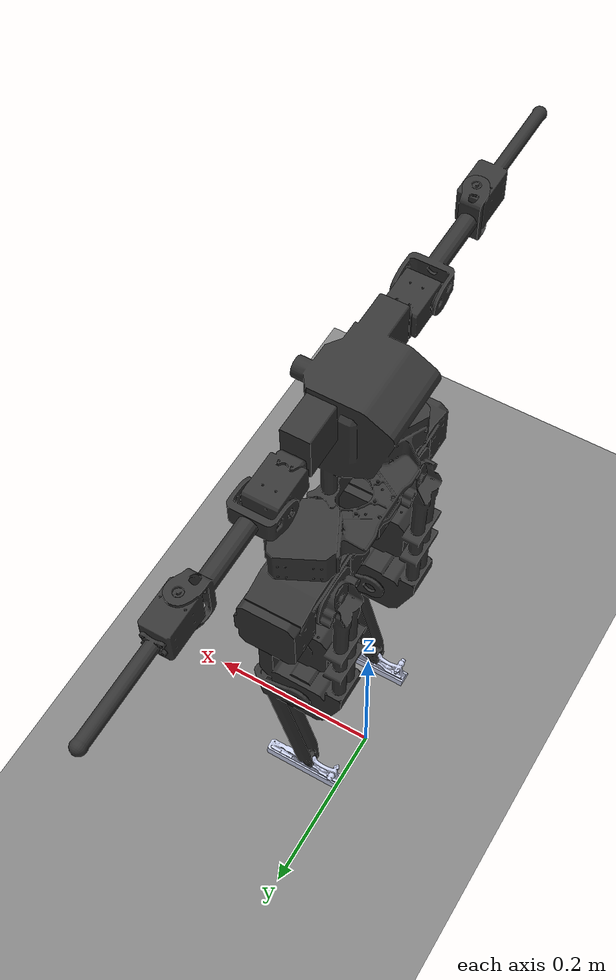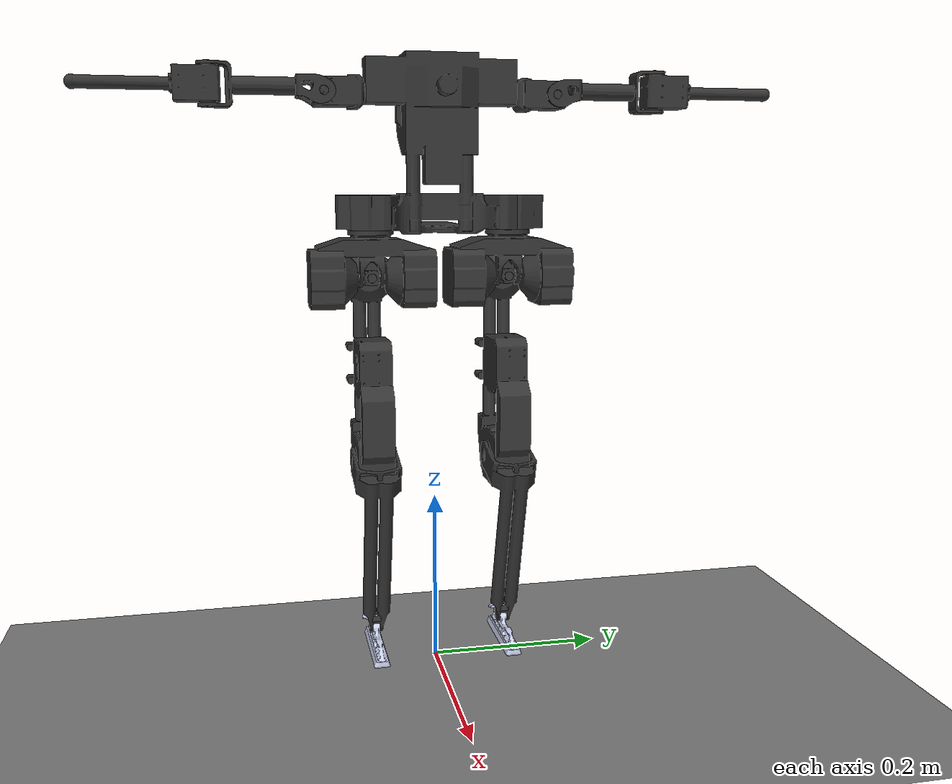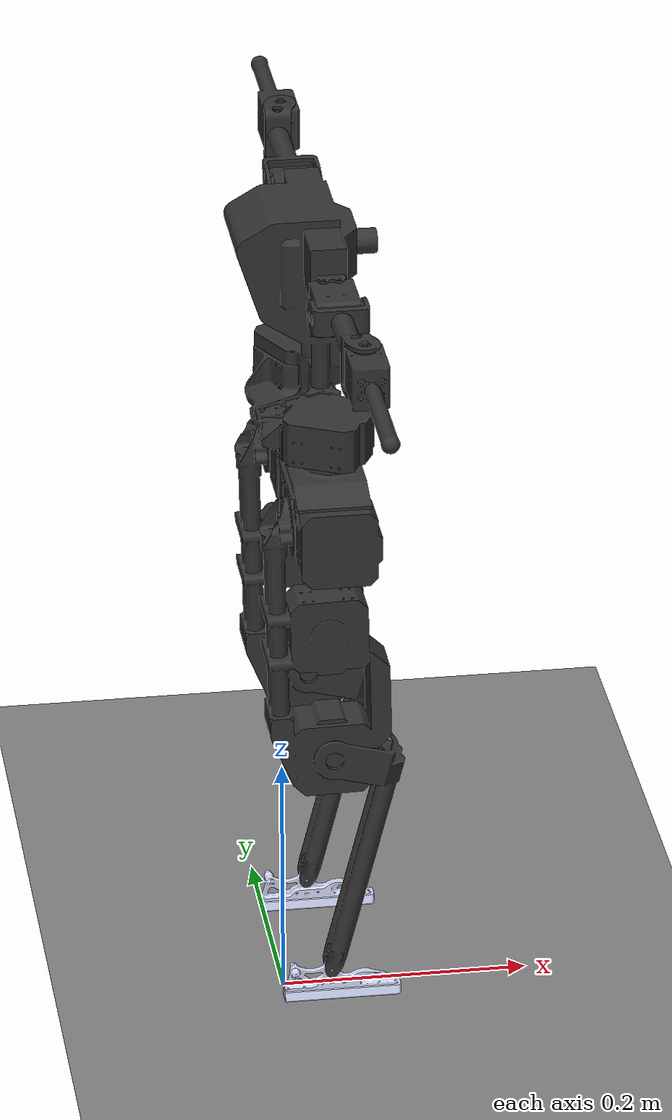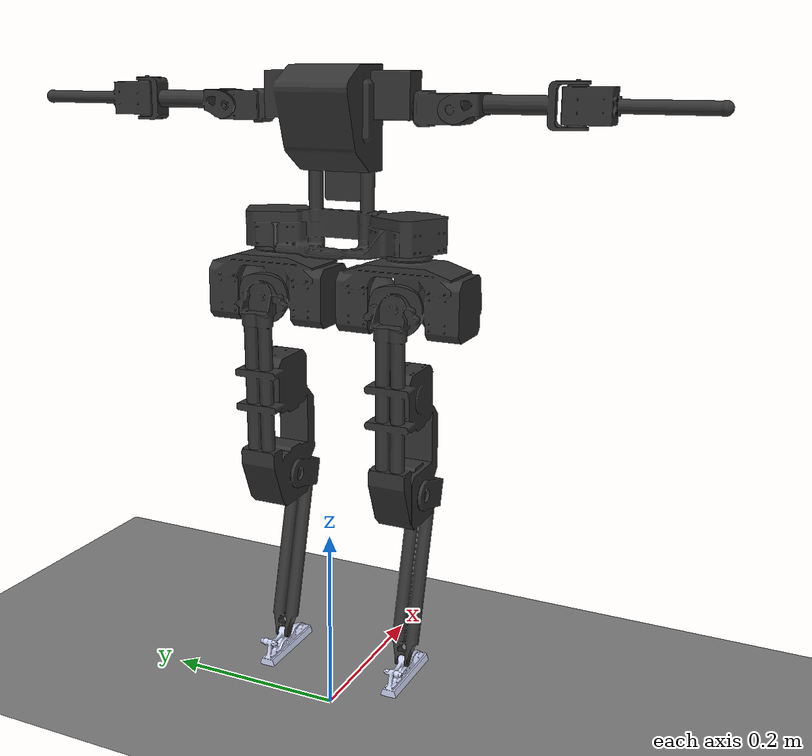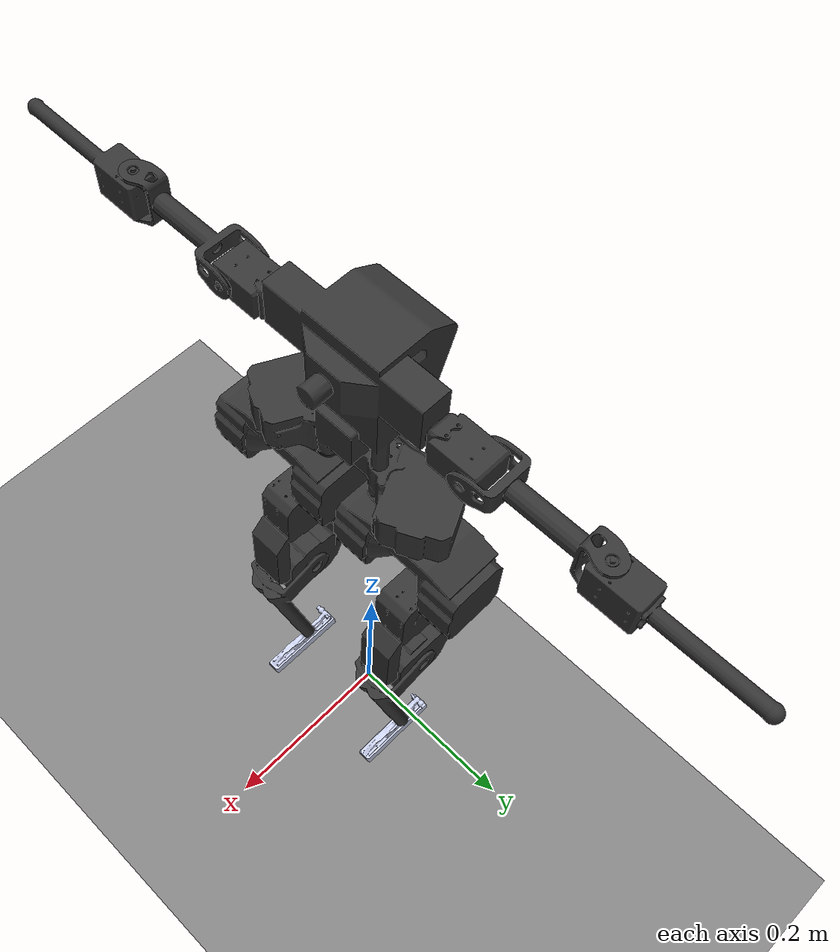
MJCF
<mujoco model="bruce">
    <compiler angle="radian" meshdir="../../urdf/bruce/meshes/"/>
    <statistic meansize="0.0946615" extent="0.788322" center="0.0304631 0 -0.123623"/>
    <default>
        <motor ctrlrange="-1 1" ctrllimited="true"/>
        <default class="body">
            <geom type="capsule" condim="1" friction="1.0 0.05 0.05" solimp=".9 .99 .003" solref=".015 1"/>
            <joint type="hinge" damping="0.1" stiffness="5" armature=".007" limited="true" solimplimit="0 .99 .01"/>
            <site size=".04" group="3"/>
            <default class="force-torque">
                <site type="box" size=".01 .01 .02" rgba="1 0 0 1"/>
            </default>
            <default class="touch">
                <site type="capsule" rgba="0 0 1 .3"/>
            </default>
        </default>
    </default>
    <asset>
        <material name="grey" rgba="0.2 0.2 0.2 1"/>
        <material name="grey2" rgba="0.792157 0.819608 0.933333 1"/>

        <mesh name="base_link" file="base_link.STL"/>
        <mesh name="hip_yaw_link_r" file="hip_yaw_link_r.STL"/>
        <mesh name="hip_roll_link_r" file="hip_roll_link_r.STL"/>
        <mesh name="hip_pitch_link_r" file="hip_pitch_link_r.STL"/>
        <mesh name="knee_pitch_link_r" file="knee_pitch_link_r.STL"/>
        <mesh name="ankle_pitch_link_r" file="ankle_pitch_link_r.STL"/>
        <mesh name="hip_yaw_link_l" file="hip_yaw_link_l.STL"/>
        <mesh name="hip_roll_link_l" file="hip_roll_link_l.STL"/>
        <mesh name="hip_pitch_link_l" file="hip_pitch_link_l.STL"/>
        <mesh name="knee_pitch_link_l" file="knee_pitch_link_l.STL"/>
        <mesh name="ankle_pitch_link_l" file="ankle_pitch_link_l.STL"/>
        <mesh name="shoulder_pitch_link_r" file="shoulder_pitch_link_r.STL"/>
        <mesh name="shoulder_roll_link_r" file="shoulder_roll_link_r.STL"/>
        <mesh name="elbow_pitch_link_r" file="elbow_pitch_link_r.STL"/>
        <mesh name="shoulder_pitch_link_l" file="shoulder_pitch_link_l.STL"/>
        <mesh name="shoulder_roll_link_l" file="shoulder_roll_link_l.STL"/>
        <mesh name="elbow_pitch_link_l" file="elbow_pitch_link_l.STL"/>
    </asset>
    <worldbody>
        <light directional="true" pos="-0.5 0.5 3" dir="0 0 -1"/>
        <geom name="floor" type="plane" conaffinity="1" size="100 100 .2"/>
        <body name="pelvis" pos="0 0 0.5" childclass="body">
            <joint name="floating_base_joint" type="free"/>
            <geom type="mesh" contype="0" conaffinity="0" group="1" density="0" material="grey"
                  mesh="base_link"/>
            <geom type="mesh" material="grey" mesh="base_link"/>
            <body name="hip_yaw_link_r" pos="0.029216 -0.0758557 -0.039765" quat="0.707107 0 0 -0.707107">
                <inertial pos="2.71e-06 -0.00024824 0.00522427" quat="0.517691 0.482114 0.518083 0.480784"
                          mass="0.637563"
                          diaginertia="0.0016174 0.00152078 0.000485406"/>
                <joint name="hip_yaw_r" pos="0 0 0" axis="0 0 1" range="-3.1415 3.1415"/>
                <geom type="mesh" contype="0" conaffinity="0" group="1" density="0" material="grey"
                      mesh="hip_yaw_link_r"/>
                <geom type="mesh" material="grey" mesh="hip_yaw_link_r"/>
                <body name="hip_roll_link_r" pos="0 0 0" quat="0.5 -0.5 0.5 0.5">
                    <inertial pos="-1.51e-07 0 6.88e-06" mass="0.05" diaginertia="1e-05 1e-05 1e-05"/>
                    <joint name="hip_roll_r" pos="0 0 0" axis="0 0 1" range="-3.1415 3.1415"/>
                    <geom type="mesh" contype="0" conaffinity="0" group="1" density="0"
                          material="grey"
                          mesh="hip_roll_link_r"/>
                    <geom type="mesh" material="grey" mesh="hip_roll_link_r"/>
                    <body name="hip_pitch_link_r" pos="0 0 0" quat="0.707107 0.707107 0 0">
                        <inertial pos="0.140714 -0.0086817 0.00167429" quat="-0.0210718 0.710934 0.00543456 0.702922"
                                  mass="0.72849" diaginertia="0.0181996 0.0179488 0.000479326"/>
                        <joint name="hip_pitch_r" pos="0 0 0" axis="0 0 1" range="-3.1415 3.1415"/>
                        <geom type="mesh" contype="0" conaffinity="0" group="1" density="0"
                              material="grey" mesh="hip_pitch_link_r"/>
                        <geom type="mesh" material="grey" mesh="hip_pitch_link_r"/>
                        <body name="knee_pitch_link_r" pos="0.204949 0 0">
                            <inertial pos="0.0729308 0.0174645 0.00216432" quat="-0.0124752 0.71085 -0.0538621 0.701167"
                                      mass="0.0956654" diaginertia="0.00108397 0.00102192 0.000106307"/>
                            <joint name="knee_pitch_r" pos="0 0 0" axis="0 0 1" range="-3.1415 3.1415"/>
                            <geom type="mesh" contype="0" conaffinity="0" group="1" density="0"
                                  material="grey" mesh="knee_pitch_link_r"/>
                            <geom type="mesh" material="grey" mesh="knee_pitch_link_r"/>
                            <body name="ankle_pitch_link_r" pos="0.199881 0 0">
                                <inertial pos="0.0120775 0.0019746 0.00029511"
                                          quat="0.443128 0.545146 -0.456612 0.545855"
                                          mass="0.0276265" diaginertia="2.58838e-05 2.09859e-05 5.64035e-06"/>
                                <joint name="ankle_pitch_r" pos="0 0 0" axis="0 0 1" range="-3.1415 3.1415"/>
                                <geom type="mesh" contype="0" conaffinity="0" group="1" density="0"
                                      material="grey2" mesh="ankle_pitch_link_r"/>
                                <geom type="mesh" material="grey2" mesh="ankle_pitch_link_r"/>
                            </body>
                        </body>
                    </body>
                </body>
            </body>
            <body name="hip_yaw_link_l" pos="0.029216 0.0758557 -0.039765" quat="0.707107 0 0 -0.707107">
                <inertial pos="0 -0.00020849 0.00528032" quat="0.518836 0.480432 0.518756 0.480506" mass="0.637386"
                          diaginertia="0.00161868 0.00152047 0.0004852"/>
                <joint name="hip_yaw_l" pos="0 0 0" axis="0 0 1" range="-3.1415 3.1415"/>
                <geom type="mesh" contype="0" conaffinity="0" group="1" density="0" material="grey"
                      mesh="hip_yaw_link_l"/>
                <geom type="mesh" material="grey" mesh="hip_yaw_link_l"/>
                <body name="hip_roll_link_l" pos="0 0 0" quat="0.500001 -0.499999 0.500001 0.499999">
                    <inertial pos="-1.51e-07 0 6.88e-06" mass="0.05" diaginertia="1e-05 1e-05 1e-05"/>
                    <joint name="hip_roll_l" pos="0 0 0" axis="0 0 1" range="-3.1415 3.1415"/>
                    <geom type="mesh" contype="0" conaffinity="0" group="1" density="0"
                          material="grey"
                          mesh="hip_roll_link_l"/>
                    <geom type="mesh" material="grey" mesh="hip_roll_link_l"/>
                    <body name="hip_pitch_link_l" pos="0 0 0" quat="0.707107 0.707107 0 0">
                        <inertial pos="0.142447 -0.00832054 0.00049317" quat="-0.002203 0.702817 0.024599 0.710942"
                                  mass="0.720628" diaginertia="0.018195 0.0179541 0.000461885"/>
                        <joint name="hip_pitch_l" pos="0 0 0" axis="0 0 1" range="-3.1415 3.1415"/>
                        <geom type="mesh" contype="0" conaffinity="0" group="1" density="0"
                              material="grey" mesh="hip_pitch_link_l"/>
                        <geom type="mesh" material="grey" mesh="hip_pitch_link_l"/>
                        <body name="knee_pitch_link_l" pos="0.204949 0 0">
                            <inertial pos="0.0730996 0.0178102 -0.00219767" quat="0.0505999 0.70058 0.00930476 0.711716"
                                      mass="0.0952654" diaginertia="0.00107995 0.00101966 0.000104635"/>
                            <joint name="knee_pitch_l" pos="0 0 0" axis="0 0 1" range="-3.1415 3.1415"/>
                            <geom type="mesh" contype="0" conaffinity="0" group="1" density="0"
                                  material="grey" mesh="knee_pitch_link_l"/>
                            <geom type="mesh" material="grey" mesh="knee_pitch_link_l"/>
                            <body name="ankle_pitch_link_l" pos="0.199881 0 0">
                                <inertial pos="0.0123398 0.00253004 -0.00030441"
                                          quat="0.455603 0.546571 -0.442281 0.545962"
                                          mass="0.0274829" diaginertia="2.60237e-05 2.09939e-05 5.69233e-06"/>
                                <joint name="ankle_pitch_l" pos="0 0 0" axis="0 0 1" range="-3.1415 3.1415"/>
                                <geom type="mesh" contype="0" conaffinity="0" group="1" density="0"
                                      material="grey2" mesh="ankle_pitch_link_l"/>
                                <geom type="mesh" material="grey2" mesh="ankle_pitch_link_l"/>
                            </body>
                        </body>
                    </body>
                </body>
            </body>
            <body name="shoulder_pitch_link_r" pos="0.029216 -0.12375 0.152985" quat="0.5 0.5 -0.5 0.5">
                <inertial pos="0 -0.00038323 -0.0141368" quat="0.999984 0.0057278 0 0" mass="0.0493169"
                          diaginertia="2.507e-05 2.40321e-05 8.31794e-06"/>
                <joint name="shoulder_pitch_r" pos="0 0 0" axis="0 0 1" range="-1.57 1.57"/>
                <geom type="mesh" contype="0" conaffinity="0" group="1" density="0" material="grey"
                      mesh="shoulder_pitch_link_r"/>
                <geom type="mesh" material="grey" mesh="shoulder_pitch_link_r"/>
                <body name="shoulder_roll_link_r" pos="0 0 0" quat="0.5 0.5 -0.5 0.5">
                    <inertial pos="0.0570939 -0.00419463 0.00093738" quat="-0.205082 0.694437 -0.169487 0.66856"
                              mass="0.024" diaginertia="0.000126403 0.000125807 7.29e-06"/>
                    <joint name="shoulder_roll_r" pos="0 0 0" axis="0 0 1" range="-1.57 1.57"/>
                    <geom type="mesh" contype="0" conaffinity="0" group="1" density="0"
                          material="grey"
                          mesh="shoulder_roll_link_r"/>
                    <geom type="mesh" material="grey" mesh="shoulder_roll_link_r"/>
                    <body name="elbow_pitch_link_r" pos="0.1146 -0.005 0.005" quat="0.707107 0.707107 0 0">
                        <inertial pos="0.0217884 0 0.0003604" quat="0.499291 0.500708 0.500708 0.499291"
                                  mass="0.0524404"
                                  diaginertia="7.261e-05 7.10305e-05 7.52949e-06"/>
                        <joint name="elbow_pitch_r" pos="0 0 0" axis="0 0 1" range="-1.57 1.57"/>
                        <geom type="mesh" contype="0" conaffinity="0" group="1" density="0"
                              material="grey" mesh="elbow_pitch_link_r"/>
                        <geom type="mesh" material="grey" mesh="elbow_pitch_link_r"/>
                    </body>
                </body>
            </body>
            <body name="shoulder_pitch_link_l" pos="0.029216 0.12375 0.152985" quat="0.5 -0.5 0.5 0.5">
                <inertial pos="0 0.00038323 -0.0141368" quat="0.999984 -0.0057278 0 0" mass="0.0493169"
                          diaginertia="2.507e-05 2.40321e-05 8.31794e-06"/>
                <joint name="shoulder_pitch_l" pos="0 0 0" axis="0 0 1" range="-3.1415 3.1415"/>
                <geom type="mesh" contype="0" conaffinity="0" group="1" density="0" material="grey"
                      mesh="shoulder_pitch_link_l"/>
                <geom type="mesh" material="grey" mesh="shoulder_pitch_link_l"/>
                <body name="shoulder_roll_link_l" pos="0 0 0" quat="0.5 0.5 -0.5 0.5">
                    <inertial pos="0.0570939 0.00419463 0.00094155" quat="0.207025 0.693936 0.171489 0.667971"
                              mass="0.0313652" diaginertia="0.000165195 0.000164406 9.52871e-06"/>
                    <joint name="shoulder_roll_l" pos="0 0 0" axis="0 0 1" range="-1.57 1.57"/>
                    <geom type="mesh" contype="0" conaffinity="0" group="1" density="0"
                          material="grey"
                          mesh="shoulder_roll_link_l"/>
                    <geom type="mesh" material="grey" mesh="shoulder_roll_link_l"/>
                    <body name="elbow_pitch_link_l" pos="0.1146 0.005 0.005" quat="0.707107 -0.707107 0 0">
                        <inertial pos="0.0217884 0 0.0003604" quat="0.499291 0.500708 0.500708 0.499291"
                                  mass="0.0524404"
                                  diaginertia="7.261e-05 7.10305e-05 7.52949e-06"/>
                        <joint name="elbow_pitch_l" pos="0 0 0" axis="0 0 1" range="-1.57 1.57"/>
                        <geom type="mesh" contype="0" conaffinity="0" group="1" density="0"
                              material="grey" mesh="elbow_pitch_link_l"/>
                        <geom type="mesh" material="grey" mesh="elbow_pitch_link_l"/>
                    </body>
                </body>
            </body>
        </body>
    </worldbody>

    <actuator>
        <motor name="hip_yaw_r" gear="1" joint="hip_yaw_r"/>
        <motor name="hip_roll_r" gear="1" joint="hip_roll_r"/>
        <motor name="hip_pitch_r" gear="1" joint="hip_pitch_r"/>
        <motor name="knee_pitch_r" gear="1" joint="knee_pitch_r"/>
        <motor name="ankle_pitch_r" gear="1" joint="ankle_pitch_r"/>
        <motor name="hip_yaw_l" gear="1" joint="hip_yaw_l"/>
        <motor name="hip_roll_l" gear="1" joint="hip_roll_l"/>
        <motor name="hip_pitch_l" gear="1" joint="hip_pitch_l"/>
        <motor name="knee_pitch_l" gear="1" joint="knee_pitch_l"/>
        <motor name="ankle_pitch_l" gear="1" joint="ankle_pitch_l"/>
        <motor name="shoulder_pitch_r" gear="1" joint="shoulder_pitch_r"/>
        <motor name="shoulder_roll_r" gear="1" joint="shoulder_roll_r"/>
        <motor name="elbow_pitch_r" gear="1" joint="elbow_pitch_r"/>
        <motor name="shoulder_pitch_l" gear="1" joint="shoulder_pitch_l"/>
        <motor name="shoulder_roll_l" gear="1" joint="shoulder_roll_l"/>
        <motor name="elbow_pitch_l" gear="1" joint="elbow_pitch_l"/>
    </actuator>
</mujoco>
